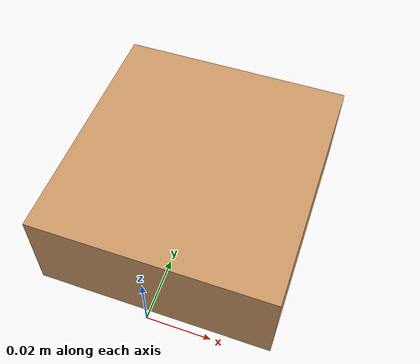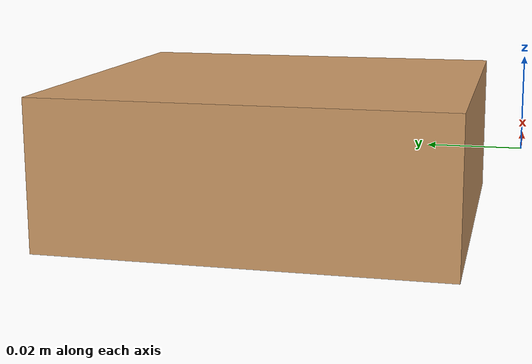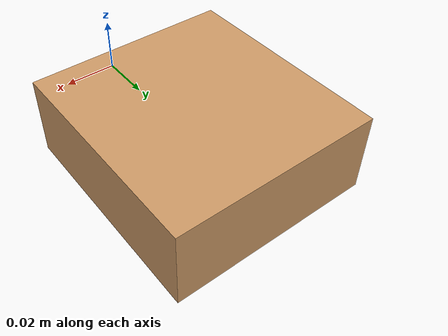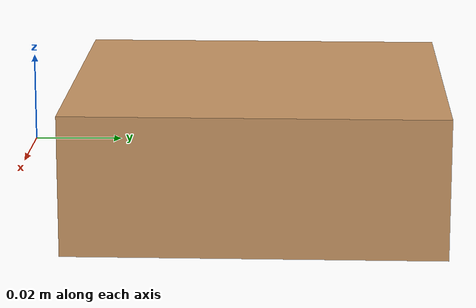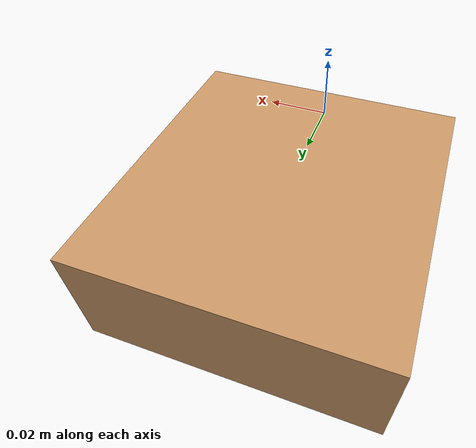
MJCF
<?xml version='1.0' encoding='utf-8'?>
<mujoco model="smplx_left_palm_wrist">
  <compiler coordinate="local" />
  <worldbody>
    <light pos="0 0 2" dir="0 0 -1" diffuse="1 1 1" specular="0.1 0.1 0.1" directional="true" />
    <body name="L_Wrist_Base" pos="0 0 0">
      <joint name="floating_base_joint" type="free" limited="false" actuatorfrclimited="false" />
      <body name="L_Wrist" pos="0 0 0" quat="1 0 0 0">
        <joint name="L_Wrist_x" type="hinge" pos="0 0 0" axis="1 0 0" stiffness="300" damping="30" armature="0.02" range="-180.0000 180.0000" limited="true" />
        <joint name="L_Wrist_y" type="hinge" pos="0 0 0" axis="0 1 0" stiffness="300" damping="30" armature="0.02" range="-180.0000 180.0000" limited="true" />
        <joint name="L_Wrist_z" type="hinge" pos="0 0 0" axis="0 0 1" stiffness="300" damping="30" armature="0.02" range="-180.0000 180.0000" limited="true" />
        <geom type="box" density="1198.336433" pos="-0.0031 0.0523 -0.0013" size="0.04 0.0428 0.0159" quat="1.0000 0.0000 0.0000 0.0000" conaffinity="1" condim="3" contype="7" margin="0.001" rgba="0.8 0.6 .4 1" />
      </body>
    </body>
  </worldbody>
  <actuator>
    <motor name="L_Wrist_x" joint="L_Wrist_x" gear="500" />
    <motor name="L_Wrist_y" joint="L_Wrist_y" gear="500" />
    <motor name="L_Wrist_z" joint="L_Wrist_z" gear="500" />
  </actuator>
  <contact />
  <sensor />
  <size njmax="64" nconmax="64" />
</mujoco>
